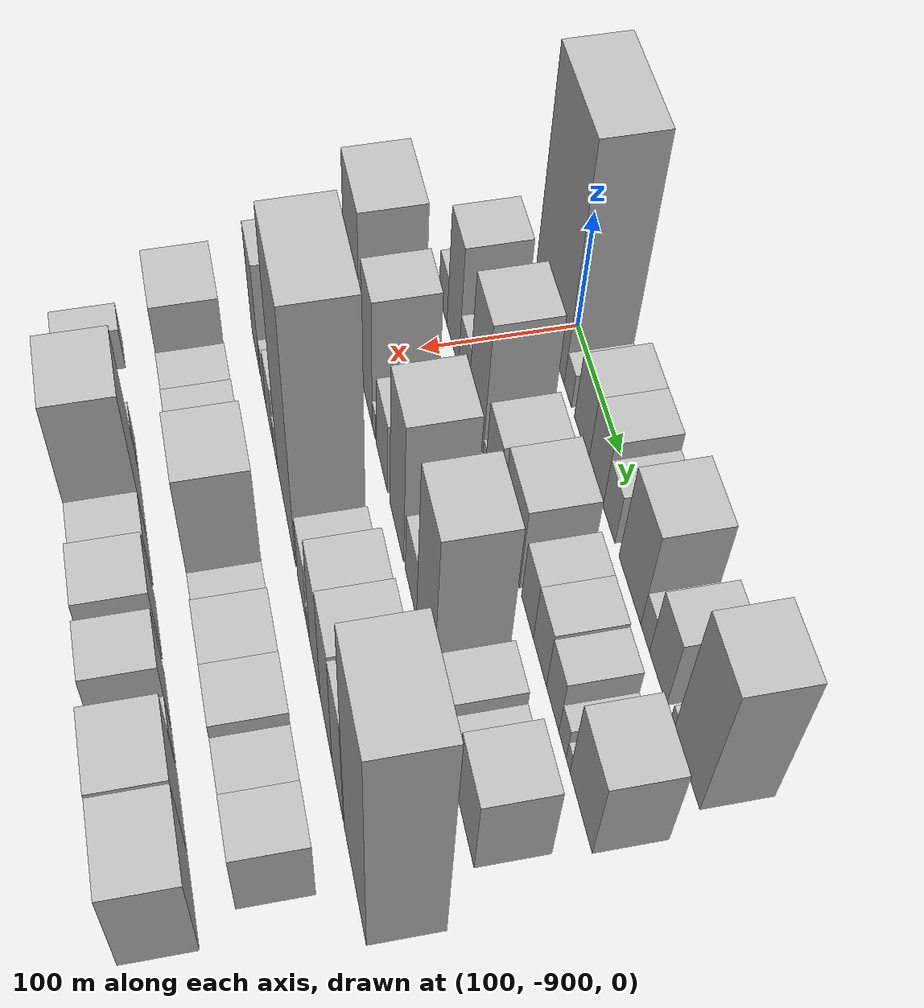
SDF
<sdf version="1.6">
 <world name="default">
  <model name="building_1">
   <static>1</static>
   <pose>100.0000 -895.2777 0 0.000000 0.000000 0.000000</pose>
   <link name="link">
    <pose>0 0 100.50 0 0 0</pose>
    <collision name="collision"><geometry><box><size>40.0000 77.4446 201.0000</size></box></geometry></collision>
    <visual name="visual">
     <cast_shadows>0</cast_shadows>
     <geometry><box><size>40.0000 77.4446 201.0000</size></box></geometry>
     <material>
      <script>
       <uri>model://HANNAS_wall/materials/scripts</uri>
       <uri>model://HANNAS_wall/materials/textures</uri>
       <name>vrc/HANNAS_wall</name>
      </script>
     </material>
    </visual>
   </link>
  </model>
  <model name="building_2">
   <static>1</static>
   <pose>100.0000 -847.5841 0 0.000000 0.000000 0.000000</pose>
   <link name="link">
    <pose>0 0 15.00 0 0 0</pose>
    <collision name="collision"><geometry><box><size>40.0000 17.9428 30.0000</size></box></geometry></collision>
    <visual name="visual">
     <cast_shadows>0</cast_shadows>
     <geometry><box><size>40.0000 17.9428 30.0000</size></box></geometry>
     <material>
      <script>
       <uri>model://HANNAS_wall/materials/scripts</uri>
       <uri>model://HANNAS_wall/materials/textures</uri>
       <name>vrc/HANNAS_wall</name>
      </script>
     </material>
    </visual>
   </link>
  </model>
  <model name="building_3">
   <static>1</static>
   <pose>100.0000 -814.9615 0 0.000000 0.000000 0.000000</pose>
   <link name="link">
    <pose>0 0 30.00 0 0 0</pose>
    <collision name="collision"><geometry><box><size>40.0000 33.3025 60.0000</size></box></geometry></collision>
    <visual name="visual">
     <cast_shadows>0</cast_shadows>
     <geometry><box><size>40.0000 33.3025 60.0000</size></box></geometry>
     <material>
      <script>
       <uri>model://HANNAS_wall/materials/scripts</uri>
       <uri>model://HANNAS_wall/materials/textures</uri>
       <name>vrc/HANNAS_wall</name>
      </script>
     </material>
    </visual>
   </link>
  </model>
  <model name="building_4">
   <static>1</static>
   <pose>100.0000 -782.0932 0 0.000000 0.000000 0.000000</pose>
   <link name="link">
    <pose>0 0 30.00 0 0 0</pose>
    <collision name="collision"><geometry><box><size>40.0000 32.4341 60.0000</size></box></geometry></collision>
    <visual name="visual">
     <cast_shadows>0</cast_shadows>
     <geometry><box><size>40.0000 32.4341 60.0000</size></box></geometry>
     <material>
      <script>
       <uri>model://HANNAS_wall/materials/scripts</uri>
       <uri>model://HANNAS_wall/materials/textures</uri>
       <name>vrc/HANNAS_wall</name>
      </script>
     </material>
    </visual>
   </link>
  </model>
  <model name="building_5">
   <static>1</static>
   <pose>100.0000 -752.9953 0 0.000000 0.000000 0.000000</pose>
   <link name="link">
    <pose>0 0 22.50 0 0 0</pose>
    <collision name="collision"><geometry><box><size>40.0000 25.7616 45.0000</size></box></geometry></collision>
    <visual name="visual">
     <cast_shadows>0</cast_shadows>
     <geometry><box><size>40.0000 25.7616 45.0000</size></box></geometry>
     <material>
      <script>
       <uri>model://HANNAS_wall/materials/scripts</uri>
       <uri>model://HANNAS_wall/materials/textures</uri>
       <name>vrc/HANNAS_wall</name>
      </script>
     </material>
    </visual>
   </link>
  </model>
  <model name="building_6">
   <static>1</static>
   <pose>100.0000 -708.6702 0 0.000000 0.000000 0.000000</pose>
   <link name="link">
    <pose>0 0 43.50 0 0 0</pose>
    <collision name="collision"><geometry><box><size>40.0000 44.8886 87.0000</size></box></geometry></collision>
    <visual name="visual">
     <cast_shadows>0</cast_shadows>
     <geometry><box><size>40.0000 44.8886 87.0000</size></box></geometry>
     <material>
      <script>
       <uri>model://HANNAS_wall/materials/scripts</uri>
       <uri>model://HANNAS_wall/materials/textures</uri>
       <name>vrc/HANNAS_wall</name>
      </script>
     </material>
    </visual>
   </link>
  </model>
  <model name="building_7">
   <static>1</static>
   <pose>100.0000 -677.5483 0 0.000000 0.000000 0.000000</pose>
   <link name="link">
    <pose>0 0 16.50 0 0 0</pose>
    <collision name="collision"><geometry><box><size>40.0000 17.3553 33.0000</size></box></geometry></collision>
    <visual name="visual">
     <cast_shadows>0</cast_shadows>
     <geometry><box><size>40.0000 17.3553 33.0000</size></box></geometry>
     <material>
      <script>
       <uri>model://HANNAS_wall/materials/scripts</uri>
       <uri>model://HANNAS_wall/materials/textures</uri>
       <name>vrc/HANNAS_wall</name>
      </script>
     </material>
    </visual>
   </link>
  </model>
  <model name="building_8">
   <static>1</static>
   <pose>100.0000 -652.5049 0 0.000000 0.000000 0.000000</pose>
   <link name="link">
    <pose>0 0 31.50 0 0 0</pose>
    <collision name="collision"><geometry><box><size>40.0000 32.7315 63.0000</size></box></geometry></collision>
    <visual name="visual">
     <cast_shadows>0</cast_shadows>
     <geometry><box><size>40.0000 32.7315 63.0000</size></box></geometry>
     <material>
      <script>
       <uri>model://HANNAS_wall/materials/scripts</uri>
       <uri>model://HANNAS_wall/materials/textures</uri>
       <name>vrc/HANNAS_wall</name>
      </script>
     </material>
    </visual>
   </link>
  </model>
  <model name="building_9">
   <static>1</static>
   <pose>100.0000 -625.0468 0 0.000000 0.000000 0.000000</pose>
   <link name="link">
    <pose>0 0 7.50 0 0 0</pose>
    <collision name="collision"><geometry><box><size>40.0000 6.1847 15.0000</size></box></geometry></collision>
    <visual name="visual">
     <cast_shadows>0</cast_shadows>
     <geometry><box><size>40.0000 6.1847 15.0000</size></box></geometry>
     <material>
      <script>
       <uri>model://HANNAS_wall/materials/scripts</uri>
       <uri>model://HANNAS_wall/materials/textures</uri>
       <name>vrc/HANNAS_wall</name>
      </script>
     </material>
    </visual>
   </link>
  </model>
  <model name="building_10">
   <static>1</static>
   <pose>100.0000 -598.8502 0 0.000000 0.000000 0.000000</pose>
   <link name="link">
    <pose>0 0 61.50 0 0 0</pose>
    <collision name="collision"><geometry><box><size>40.0000 46.2086 123.0000</size></box></geometry></collision>
    <visual name="visual">
     <cast_shadows>0</cast_shadows>
     <geometry><box><size>40.0000 46.2086 123.0000</size></box></geometry>
     <material>
      <script>
       <uri>model://HANNAS_wall/materials/scripts</uri>
       <uri>model://HANNAS_wall/materials/textures</uri>
       <name>vrc/HANNAS_wall</name>
      </script>
     </material>
    </visual>
   </link>
  </model>
  <model name="building_54">
   <static>1</static>
   <pose>160.0000 -927.9908 0 0.000000 0.000000 0.000000</pose>
   <link name="link">
    <pose>0 0 21.00 0 0 0</pose>
    <collision name="collision"><geometry><box><size>40.0000 24.0184 42.0000</size></box></geometry></collision>
    <visual name="visual">
     <cast_shadows>0</cast_shadows>
     <geometry><box><size>40.0000 24.0184 42.0000</size></box></geometry>
     <material>
      <script>
       <uri>model://HANNAS_wall/materials/scripts</uri>
       <uri>model://HANNAS_wall/materials/textures</uri>
       <name>vrc/HANNAS_wall</name>
      </script>
     </material>
    </visual>
   </link>
  </model>
  <model name="building_55">
   <static>1</static>
   <pose>160.0000 -898.8328 0 0.000000 0.000000 0.000000</pose>
   <link name="link">
    <pose>0 0 52.50 0 0 0</pose>
    <collision name="collision"><geometry><box><size>40.0000 34.2976 105.0000</size></box></geometry></collision>
    <visual name="visual">
     <cast_shadows>0</cast_shadows>
     <geometry><box><size>40.0000 34.2976 105.0000</size></box></geometry>
     <material>
      <script>
       <uri>model://HANNAS_wall/materials/scripts</uri>
       <uri>model://HANNAS_wall/materials/textures</uri>
       <name>vrc/HANNAS_wall</name>
      </script>
     </material>
    </visual>
   </link>
  </model>
  <model name="building_56">
   <static>1</static>
   <pose>160.0000 -867.7565 0 0.000000 0.000000 0.000000</pose>
   <link name="link">
    <pose>0 0 24.00 0 0 0</pose>
    <collision name="collision"><geometry><box><size>40.0000 27.8552 48.0000</size></box></geometry></collision>
    <visual name="visual">
     <cast_shadows>0</cast_shadows>
     <geometry><box><size>40.0000 27.8552 48.0000</size></box></geometry>
     <material>
      <script>
       <uri>model://HANNAS_wall/materials/scripts</uri>
       <uri>model://HANNAS_wall/materials/textures</uri>
       <name>vrc/HANNAS_wall</name>
      </script>
     </material>
    </visual>
   </link>
  </model>
  <model name="building_57">
   <static>1</static>
   <pose>160.0000 -833.9376 0 0.000000 0.000000 0.000000</pose>
   <link name="link">
    <pose>0 0 58.50 0 0 0</pose>
    <collision name="collision"><geometry><box><size>40.0000 39.7826 117.0000</size></box></geometry></collision>
    <visual name="visual">
     <cast_shadows>0</cast_shadows>
     <geometry><box><size>40.0000 39.7826 117.0000</size></box></geometry>
     <material>
      <script>
       <uri>model://HANNAS_wall/materials/scripts</uri>
       <uri>model://HANNAS_wall/materials/textures</uri>
       <name>vrc/HANNAS_wall</name>
      </script>
     </material>
    </visual>
   </link>
  </model>
  <model name="building_58">
   <static>1</static>
   <pose>160.0000 -810.3948 0 0.000000 0.000000 0.000000</pose>
   <link name="link">
    <pose>0 0 7.50 0 0 0</pose>
    <collision name="collision"><geometry><box><size>40.0000 7.3031 15.0000</size></box></geometry></collision>
    <visual name="visual">
     <cast_shadows>0</cast_shadows>
     <geometry><box><size>40.0000 7.3031 15.0000</size></box></geometry>
     <material>
      <script>
       <uri>model://HANNAS_wall/materials/scripts</uri>
       <uri>model://HANNAS_wall/materials/textures</uri>
       <name>vrc/HANNAS_wall</name>
      </script>
     </material>
    </visual>
   </link>
  </model>
  <model name="building_59">
   <static>1</static>
   <pose>160.0000 -790.4856 0 0.000000 0.000000 0.000000</pose>
   <link name="link">
    <pose>0 0 30.00 0 0 0</pose>
    <collision name="collision"><geometry><box><size>40.0000 32.5152 60.0000</size></box></geometry></collision>
    <visual name="visual">
     <cast_shadows>0</cast_shadows>
     <geometry><box><size>40.0000 32.5152 60.0000</size></box></geometry>
     <material>
      <script>
       <uri>model://HANNAS_wall/materials/scripts</uri>
       <uri>model://HANNAS_wall/materials/textures</uri>
       <name>vrc/HANNAS_wall</name>
      </script>
     </material>
    </visual>
   </link>
  </model>
  <model name="building_60">
   <static>1</static>
   <pose>160.0000 -742.6787 0 0.000000 0.000000 0.000000</pose>
   <link name="link">
    <pose>0 0 37.50 0 0 0</pose>
    <collision name="collision"><geometry><box><size>40.0000 43.0987 75.0000</size></box></geometry></collision>
    <visual name="visual">
     <cast_shadows>0</cast_shadows>
     <geometry><box><size>40.0000 43.0987 75.0000</size></box></geometry>
     <material>
      <script>
       <uri>model://HANNAS_wall/materials/scripts</uri>
       <uri>model://HANNAS_wall/materials/textures</uri>
       <name>vrc/HANNAS_wall</name>
      </script>
     </material>
    </visual>
   </link>
  </model>
  <model name="building_61">
   <static>1</static>
   <pose>160.0000 -702.3537 0 0.000000 0.000000 0.000000</pose>
   <link name="link">
    <pose>0 0 27.00 0 0 0</pose>
    <collision name="collision"><geometry><box><size>40.0000 27.5514 54.0000</size></box></geometry></collision>
    <visual name="visual">
     <cast_shadows>0</cast_shadows>
     <geometry><box><size>40.0000 27.5514 54.0000</size></box></geometry>
     <material>
      <script>
       <uri>model://HANNAS_wall/materials/scripts</uri>
       <uri>model://HANNAS_wall/materials/textures</uri>
       <name>vrc/HANNAS_wall</name>
      </script>
     </material>
    </visual>
   </link>
  </model>
  <model name="building_62">
   <static>1</static>
   <pose>160.0000 -673.6797 0 0.000000 0.000000 0.000000</pose>
   <link name="link">
    <pose>0 0 27.00 0 0 0</pose>
    <collision name="collision"><geometry><box><size>40.0000 29.7965 54.0000</size></box></geometry></collision>
    <visual name="visual">
     <cast_shadows>0</cast_shadows>
     <geometry><box><size>40.0000 29.7965 54.0000</size></box></geometry>
     <material>
      <script>
       <uri>model://HANNAS_wall/materials/scripts</uri>
       <uri>model://HANNAS_wall/materials/textures</uri>
       <name>vrc/HANNAS_wall</name>
      </script>
     </material>
    </visual>
   </link>
  </model>
  <model name="building_63">
   <static>1</static>
   <pose>160.0000 -645.2912 0 0.000000 0.000000 0.000000</pose>
   <link name="link">
    <pose>0 0 25.50 0 0 0</pose>
    <collision name="collision"><geometry><box><size>40.0000 26.9807 51.0000</size></box></geometry></collision>
    <visual name="visual">
     <cast_shadows>0</cast_shadows>
     <geometry><box><size>40.0000 26.9807 51.0000</size></box></geometry>
     <material>
      <script>
       <uri>model://HANNAS_wall/materials/scripts</uri>
       <uri>model://HANNAS_wall/materials/textures</uri>
       <name>vrc/HANNAS_wall</name>
      </script>
     </material>
    </visual>
   </link>
  </model>
  <model name="building_64">
   <static>1</static>
   <pose>160.0000 -624.0570 0 0.000000 0.000000 0.000000</pose>
   <link name="link">
    <pose>0 0 15.00 0 0 0</pose>
    <collision name="collision"><geometry><box><size>40.0000 15.4877 30.0000</size></box></geometry></collision>
    <visual name="visual">
     <cast_shadows>0</cast_shadows>
     <geometry><box><size>40.0000 15.4877 30.0000</size></box></geometry>
     <material>
      <script>
       <uri>model://HANNAS_wall/materials/scripts</uri>
       <uri>model://HANNAS_wall/materials/textures</uri>
       <name>vrc/HANNAS_wall</name>
      </script>
     </material>
    </visual>
   </link>
  </model>
  <model name="building_65">
   <static>1</static>
   <pose>160.0000 -612.2187 0 0.000000 0.000000 0.000000</pose>
   <link name="link">
    <pose>0 0 9.00 0 0 0</pose>
    <collision name="collision"><geometry><box><size>40.0000 8.1890 18.0000</size></box></geometry></collision>
    <visual name="visual">
     <cast_shadows>0</cast_shadows>
     <geometry><box><size>40.0000 8.1890 18.0000</size></box></geometry>
     <material>
      <script>
       <uri>model://HANNAS_wall/materials/scripts</uri>
       <uri>model://HANNAS_wall/materials/textures</uri>
       <name>vrc/HANNAS_wall</name>
      </script>
     </material>
    </visual>
   </link>
  </model>
  <model name="building_66">
   <static>1</static>
   <pose>160.0000 -585.6328 0 0.000000 0.000000 0.000000</pose>
   <link name="link">
    <pose>0 0 37.50 0 0 0</pose>
    <collision name="collision"><geometry><box><size>40.0000 44.9827 75.0000</size></box></geometry></collision>
    <visual name="visual">
     <cast_shadows>0</cast_shadows>
     <geometry><box><size>40.0000 44.9827 75.0000</size></box></geometry>
     <material>
      <script>
       <uri>model://HANNAS_wall/materials/scripts</uri>
       <uri>model://HANNAS_wall/materials/textures</uri>
       <name>vrc/HANNAS_wall</name>
      </script>
     </material>
    </visual>
   </link>
  </model>
  <model name="building_112">
   <static>1</static>
   <pose>220.0000 -914.1898 0 0.000000 0.000000 0.000000</pose>
   <link name="link">
    <pose>0 0 69.00 0 0 0</pose>
    <collision name="collision"><geometry><box><size>40.0000 51.6205 138.0000</size></box></geometry></collision>
    <visual name="visual">
     <cast_shadows>0</cast_shadows>
     <geometry><box><size>40.0000 51.6205 138.0000</size></box></geometry>
     <material>
      <script>
       <uri>model://HANNAS_wall/materials/scripts</uri>
       <uri>model://HANNAS_wall/materials/textures</uri>
       <name>vrc/HANNAS_wall</name>
      </script>
     </material>
    </visual>
   </link>
  </model>
  <model name="building_113">
   <static>1</static>
   <pose>220.0000 -863.7200 0 0.000000 0.000000 0.000000</pose>
   <link name="link">
    <pose>0 0 55.50 0 0 0</pose>
    <collision name="collision"><geometry><box><size>40.0000 33.3190 111.0000</size></box></geometry></collision>
    <visual name="visual">
     <cast_shadows>0</cast_shadows>
     <geometry><box><size>40.0000 33.3190 111.0000</size></box></geometry>
     <material>
      <script>
       <uri>model://HANNAS_wall/materials/scripts</uri>
       <uri>model://HANNAS_wall/materials/textures</uri>
       <name>vrc/HANNAS_wall</name>
      </script>
     </material>
    </visual>
   </link>
  </model>
  <model name="building_114">
   <static>1</static>
   <pose>220.0000 -842.0062 0 0.000000 0.000000 0.000000</pose>
   <link name="link">
    <pose>0 0 12.00 0 0 0</pose>
    <collision name="collision"><geometry><box><size>40.0000 10.1086 24.0000</size></box></geometry></collision>
    <visual name="visual">
     <cast_shadows>0</cast_shadows>
     <geometry><box><size>40.0000 10.1086 24.0000</size></box></geometry>
     <material>
      <script>
       <uri>model://HANNAS_wall/materials/scripts</uri>
       <uri>model://HANNAS_wall/materials/textures</uri>
       <name>vrc/HANNAS_wall</name>
      </script>
     </material>
    </visual>
   </link>
  </model>
  <model name="building_115">
   <static>1</static>
   <pose>220.0000 -815.4545 0 0.000000 0.000000 0.000000</pose>
   <link name="link">
    <pose>0 0 31.50 0 0 0</pose>
    <collision name="collision"><geometry><box><size>40.0000 34.9948 63.0000</size></box></geometry></collision>
    <visual name="visual">
     <cast_shadows>0</cast_shadows>
     <geometry><box><size>40.0000 34.9948 63.0000</size></box></geometry>
     <material>
      <script>
       <uri>model://HANNAS_wall/materials/scripts</uri>
       <uri>model://HANNAS_wall/materials/textures</uri>
       <name>vrc/HANNAS_wall</name>
      </script>
     </material>
    </visual>
   </link>
  </model>
  <model name="building_116">
   <static>1</static>
   <pose>220.0000 -770.4806 0 0.000000 0.000000 0.000000</pose>
   <link name="link">
    <pose>0 0 63.00 0 0 0</pose>
    <collision name="collision"><geometry><box><size>40.0000 40.9531 126.0000</size></box></geometry></collision>
    <visual name="visual">
     <cast_shadows>0</cast_shadows>
     <geometry><box><size>40.0000 40.9531 126.0000</size></box></geometry>
     <material>
      <script>
       <uri>model://HANNAS_wall/materials/scripts</uri>
       <uri>model://HANNAS_wall/materials/textures</uri>
       <name>vrc/HANNAS_wall</name>
      </script>
     </material>
    </visual>
   </link>
  </model>
  <model name="building_117">
   <static>1</static>
   <pose>220.0000 -729.1171 0 0.000000 0.000000 0.000000</pose>
   <link name="link">
    <pose>0 0 27.00 0 0 0</pose>
    <collision name="collision"><geometry><box><size>40.0000 31.7740 54.0000</size></box></geometry></collision>
    <visual name="visual">
     <cast_shadows>0</cast_shadows>
     <geometry><box><size>40.0000 31.7740 54.0000</size></box></geometry>
     <material>
      <script>
       <uri>model://HANNAS_wall/materials/scripts</uri>
       <uri>model://HANNAS_wall/materials/textures</uri>
       <name>vrc/HANNAS_wall</name>
      </script>
     </material>
    </visual>
   </link>
  </model>
  <model name="building_118">
   <static>1</static>
   <pose>220.0000 -690.3262 0 0.000000 0.000000 0.000000</pose>
   <link name="link">
    <pose>0 0 73.50 0 0 0</pose>
    <collision name="collision"><geometry><box><size>40.0000 45.8078 147.0000</size></box></geometry></collision>
    <visual name="visual">
     <cast_shadows>0</cast_shadows>
     <geometry><box><size>40.0000 45.8078 147.0000</size></box></geometry>
     <material>
      <script>
       <uri>model://HANNAS_wall/materials/scripts</uri>
       <uri>model://HANNAS_wall/materials/textures</uri>
       <name>vrc/HANNAS_wall</name>
      </script>
     </material>
    </visual>
   </link>
  </model>
  <model name="building_119">
   <static>1</static>
   <pose>220.0000 -645.3459 0 0.000000 0.000000 0.000000</pose>
   <link name="link">
    <pose>0 0 27.00 0 0 0</pose>
    <collision name="collision"><geometry><box><size>40.0000 30.1527 54.0000</size></box></geometry></collision>
    <visual name="visual">
     <cast_shadows>0</cast_shadows>
     <geometry><box><size>40.0000 30.1527 54.0000</size></box></geometry>
     <material>
      <script>
       <uri>model://HANNAS_wall/materials/scripts</uri>
       <uri>model://HANNAS_wall/materials/textures</uri>
       <name>vrc/HANNAS_wall</name>
      </script>
     </material>
    </visual>
   </link>
  </model>
  <model name="building_120">
   <static>1</static>
   <pose>220.0000 -618.4193 0 0.000000 0.000000 0.000000</pose>
   <link name="link">
    <pose>0 0 21.00 0 0 0</pose>
    <collision name="collision"><geometry><box><size>40.0000 23.7007 42.0000</size></box></geometry></collision>
    <visual name="visual">
     <cast_shadows>0</cast_shadows>
     <geometry><box><size>40.0000 23.7007 42.0000</size></box></geometry>
     <material>
      <script>
       <uri>model://HANNAS_wall/materials/scripts</uri>
       <uri>model://HANNAS_wall/materials/textures</uri>
       <name>vrc/HANNAS_wall</name>
      </script>
     </material>
    </visual>
   </link>
  </model>
  <model name="building_121">
   <static>1</static>
   <pose>220.0000 -586.6677 0 0.000000 0.000000 0.000000</pose>
   <link name="link">
    <pose>0 0 36.00 0 0 0</pose>
    <collision name="collision"><geometry><box><size>40.0000 39.8025 72.0000</size></box></geometry></collision>
    <visual name="visual">
     <cast_shadows>0</cast_shadows>
     <geometry><box><size>40.0000 39.8025 72.0000</size></box></geometry>
     <material>
      <script>
       <uri>model://HANNAS_wall/materials/scripts</uri>
       <uri>model://HANNAS_wall/materials/textures</uri>
       <name>vrc/HANNAS_wall</name>
      </script>
     </material>
    </visual>
   </link>
  </model>
  <model name="building_168">
   <static>1</static>
   <pose>280.0000 -914.3869 0 0.000000 0.000000 0.000000</pose>
   <link name="link">
    <pose>0 0 49.50 0 0 0</pose>
    <collision name="collision"><geometry><box><size>40.0000 35.2262 99.0000</size></box></geometry></collision>
    <visual name="visual">
     <cast_shadows>0</cast_shadows>
     <geometry><box><size>40.0000 35.2262 99.0000</size></box></geometry>
     <material>
      <script>
       <uri>model://HANNAS_wall/materials/scripts</uri>
       <uri>model://HANNAS_wall/materials/textures</uri>
       <name>vrc/HANNAS_wall</name>
      </script>
     </material>
    </visual>
   </link>
  </model>
  <model name="building_169">
   <static>1</static>
   <pose>280.0000 -882.7238 0 0.000000 0.000000 0.000000</pose>
   <link name="link">
    <pose>0 0 19.50 0 0 0</pose>
    <collision name="collision"><geometry><box><size>40.0000 20.1000 39.0000</size></box></geometry></collision>
    <visual name="visual">
     <cast_shadows>0</cast_shadows>
     <geometry><box><size>40.0000 20.1000 39.0000</size></box></geometry>
     <material>
      <script>
       <uri>model://HANNAS_wall/materials/scripts</uri>
       <uri>model://HANNAS_wall/materials/textures</uri>
       <name>vrc/HANNAS_wall</name>
      </script>
     </material>
    </visual>
   </link>
  </model>
  <model name="building_170">
   <static>1</static>
   <pose>280.0000 -857.6192 0 0.000000 0.000000 0.000000</pose>
   <link name="link">
    <pose>0 0 27.00 0 0 0</pose>
    <collision name="collision"><geometry><box><size>40.0000 30.1091 54.0000</size></box></geometry></collision>
    <visual name="visual">
     <cast_shadows>0</cast_shadows>
     <geometry><box><size>40.0000 30.1091 54.0000</size></box></geometry>
     <material>
      <script>
       <uri>model://HANNAS_wall/materials/scripts</uri>
       <uri>model://HANNAS_wall/materials/textures</uri>
       <name>vrc/HANNAS_wall</name>
      </script>
     </material>
    </visual>
   </link>
  </model>
  <model name="building_171">
   <static>1</static>
   <pose>280.0000 -833.9970 0 0.000000 0.000000 0.000000</pose>
   <link name="link">
    <pose>0 0 15.00 0 0 0</pose>
    <collision name="collision"><geometry><box><size>40.0000 17.1353 30.0000</size></box></geometry></collision>
    <visual name="visual">
     <cast_shadows>0</cast_shadows>
     <geometry><box><size>40.0000 17.1353 30.0000</size></box></geometry>
     <material>
      <script>
       <uri>model://HANNAS_wall/materials/scripts</uri>
       <uri>model://HANNAS_wall/materials/textures</uri>
       <name>vrc/HANNAS_wall</name>
      </script>
     </material>
    </visual>
   </link>
  </model>
  <model name="building_172">
   <static>1</static>
   <pose>280.0000 -791.8586 0 0.000000 0.000000 0.000000</pose>
   <link name="link">
    <pose>0 0 111.00 0 0 0</pose>
    <collision name="collision"><geometry><box><size>40.0000 67.1416 222.0000</size></box></geometry></collision>
    <visual name="visual">
     <cast_shadows>0</cast_shadows>
     <geometry><box><size>40.0000 67.1416 222.0000</size></box></geometry>
     <material>
      <script>
       <uri>model://HANNAS_wall/materials/scripts</uri>
       <uri>model://HANNAS_wall/materials/textures</uri>
       <name>vrc/HANNAS_wall</name>
      </script>
     </material>
    </visual>
   </link>
  </model>
  <model name="building_173">
   <static>1</static>
   <pose>280.0000 -735.6398 0 0.000000 0.000000 0.000000</pose>
   <link name="link">
    <pose>0 0 30.00 0 0 0</pose>
    <collision name="collision"><geometry><box><size>40.0000 31.2961 60.0000</size></box></geometry></collision>
    <visual name="visual">
     <cast_shadows>0</cast_shadows>
     <geometry><box><size>40.0000 31.2961 60.0000</size></box></geometry>
     <material>
      <script>
       <uri>model://HANNAS_wall/materials/scripts</uri>
       <uri>model://HANNAS_wall/materials/textures</uri>
       <name>vrc/HANNAS_wall</name>
      </script>
     </material>
    </visual>
   </link>
  </model>
  <model name="building_174">
   <static>1</static>
   <pose>280.0000 -714.7332 0 0.000000 0.000000 0.000000</pose>
   <link name="link">
    <pose>0 0 12.00 0 0 0</pose>
    <collision name="collision"><geometry><box><size>40.0000 10.5170 24.0000</size></box></geometry></collision>
    <visual name="visual">
     <cast_shadows>0</cast_shadows>
     <geometry><box><size>40.0000 10.5170 24.0000</size></box></geometry>
     <material>
      <script>
       <uri>model://HANNAS_wall/materials/scripts</uri>
       <uri>model://HANNAS_wall/materials/textures</uri>
       <name>vrc/HANNAS_wall</name>
      </script>
     </material>
    </visual>
   </link>
  </model>
  <model name="building_175">
   <static>1</static>
   <pose>280.0000 -691.7377 0 0.000000 0.000000 0.000000</pose>
   <link name="link">
    <pose>0 0 51.00 0 0 0</pose>
    <collision name="collision"><geometry><box><size>40.0000 35.4740 102.0000</size></box></geometry></collision>
    <visual name="visual">
     <cast_shadows>0</cast_shadows>
     <geometry><box><size>40.0000 35.4740 102.0000</size></box></geometry>
     <material>
      <script>
       <uri>model://HANNAS_wall/materials/scripts</uri>
       <uri>model://HANNAS_wall/materials/textures</uri>
       <name>vrc/HANNAS_wall</name>
      </script>
     </material>
    </visual>
   </link>
  </model>
  <model name="building_176">
   <static>1</static>
   <pose>280.0000 -655.6229 0 0.000000 0.000000 0.000000</pose>
   <link name="link">
    <pose>0 0 55.50 0 0 0</pose>
    <collision name="collision"><geometry><box><size>40.0000 36.7555 111.0000</size></box></geometry></collision>
    <visual name="visual">
     <cast_shadows>0</cast_shadows>
     <geometry><box><size>40.0000 36.7555 111.0000</size></box></geometry>
     <material>
      <script>
       <uri>model://HANNAS_wall/materials/scripts</uri>
       <uri>model://HANNAS_wall/materials/textures</uri>
       <name>vrc/HANNAS_wall</name>
      </script>
     </material>
    </visual>
   </link>
  </model>
  <model name="building_177">
   <static>1</static>
   <pose>280.0000 -620.1579 0 0.000000 0.000000 0.000000</pose>
   <link name="link">
    <pose>0 0 54.00 0 0 0</pose>
    <collision name="collision"><geometry><box><size>40.0000 34.1746 108.0000</size></box></geometry></collision>
    <visual name="visual">
     <cast_shadows>0</cast_shadows>
     <geometry><box><size>40.0000 34.1746 108.0000</size></box></geometry>
     <material>
      <script>
       <uri>model://HANNAS_wall/materials/scripts</uri>
       <uri>model://HANNAS_wall/materials/textures</uri>
       <name>vrc/HANNAS_wall</name>
      </script>
     </material>
    </visual>
   </link>
  </model>
  <model name="building_178">
   <static>1</static>
   <pose>280.0000 -568.9653 0 0.000000 0.000000 0.000000</pose>
   <link name="link">
    <pose>0 0 103.50 0 0 0</pose>
    <collision name="collision"><geometry><box><size>40.0000 62.2105 207.0000</size></box></geometry></collision>
    <visual name="visual">
     <cast_shadows>0</cast_shadows>
     <geometry><box><size>40.0000 62.2105 207.0000</size></box></geometry>
     <material>
      <script>
       <uri>model://HANNAS_wall/materials/scripts</uri>
       <uri>model://HANNAS_wall/materials/textures</uri>
       <name>vrc/HANNAS_wall</name>
      </script>
     </material>
    </visual>
   </link>
  </model>
  <model name="building_225">
   <static>1</static>
   <pose>340.0000 -917.4089 0 0.000000 0.000000 0.000000</pose>
   <link name="link">
    <pose>0 0 39.00 0 0 0</pose>
    <collision name="collision"><geometry><box><size>40.0000 45.1822 78.0000</size></box></geometry></collision>
    <visual name="visual">
     <cast_shadows>0</cast_shadows>
     <geometry><box><size>40.0000 45.1822 78.0000</size></box></geometry>
     <material>
      <script>
       <uri>model://HANNAS_wall/materials/scripts</uri>
       <uri>model://HANNAS_wall/materials/textures</uri>
       <name>vrc/HANNAS_wall</name>
      </script>
     </material>
    </visual>
   </link>
  </model>
  <model name="building_226">
   <static>1</static>
   <pose>340.0000 -889.5765 0 0.000000 0.000000 0.000000</pose>
   <link name="link">
    <pose>0 0 10.50 0 0 0</pose>
    <collision name="collision"><geometry><box><size>40.0000 10.4828 21.0000</size></box></geometry></collision>
    <visual name="visual">
     <cast_shadows>0</cast_shadows>
     <geometry><box><size>40.0000 10.4828 21.0000</size></box></geometry>
     <material>
      <script>
       <uri>model://HANNAS_wall/materials/scripts</uri>
       <uri>model://HANNAS_wall/materials/textures</uri>
       <name>vrc/HANNAS_wall</name>
      </script>
     </material>
    </visual>
   </link>
  </model>
  <model name="building_227">
   <static>1</static>
   <pose>340.0000 -869.7013 0 0.000000 0.000000 0.000000</pose>
   <link name="link">
    <pose>0 0 25.50 0 0 0</pose>
    <collision name="collision"><geometry><box><size>40.0000 29.2675 51.0000</size></box></geometry></collision>
    <visual name="visual">
     <cast_shadows>0</cast_shadows>
     <geometry><box><size>40.0000 29.2675 51.0000</size></box></geometry>
     <material>
      <script>
       <uri>model://HANNAS_wall/materials/scripts</uri>
       <uri>model://HANNAS_wall/materials/textures</uri>
       <name>vrc/HANNAS_wall</name>
      </script>
     </material>
    </visual>
   </link>
  </model>
  <model name="building_228">
   <static>1</static>
   <pose>340.0000 -834.5256 0 0.000000 0.000000 0.000000</pose>
   <link name="link">
    <pose>0 0 30.00 0 0 0</pose>
    <collision name="collision"><geometry><box><size>40.0000 31.0839 60.0000</size></box></geometry></collision>
    <visual name="visual">
     <cast_shadows>0</cast_shadows>
     <geometry><box><size>40.0000 31.0839 60.0000</size></box></geometry>
     <material>
      <script>
       <uri>model://HANNAS_wall/materials/scripts</uri>
       <uri>model://HANNAS_wall/materials/textures</uri>
       <name>vrc/HANNAS_wall</name>
      </script>
     </material>
    </visual>
   </link>
  </model>
  <model name="building_229">
   <static>1</static>
   <pose>340.0000 -801.0010 0 0.000000 0.000000 0.000000</pose>
   <link name="link">
    <pose>0 0 31.50 0 0 0</pose>
    <collision name="collision"><geometry><box><size>40.0000 35.9652 63.0000</size></box></geometry></collision>
    <visual name="visual">
     <cast_shadows>0</cast_shadows>
     <geometry><box><size>40.0000 35.9652 63.0000</size></box></geometry>
     <material>
      <script>
       <uri>model://HANNAS_wall/materials/scripts</uri>
       <uri>model://HANNAS_wall/materials/textures</uri>
       <name>vrc/HANNAS_wall</name>
      </script>
     </material>
    </visual>
   </link>
  </model>
  <model name="building_230">
   <static>1</static>
   <pose>340.0000 -760.9612 0 0.000000 0.000000 0.000000</pose>
   <link name="link">
    <pose>0 0 63.00 0 0 0</pose>
    <collision name="collision"><geometry><box><size>40.0000 44.1145 126.0000</size></box></geometry></collision>
    <visual name="visual">
     <cast_shadows>0</cast_shadows>
     <geometry><box><size>40.0000 44.1145 126.0000</size></box></geometry>
     <material>
      <script>
       <uri>model://HANNAS_wall/materials/scripts</uri>
       <uri>model://HANNAS_wall/materials/textures</uri>
       <name>vrc/HANNAS_wall</name>
      </script>
     </material>
    </visual>
   </link>
  </model>
  <model name="building_231">
   <static>1</static>
   <pose>340.0000 -726.3278 0 0.000000 0.000000 0.000000</pose>
   <link name="link">
    <pose>0 0 21.00 0 0 0</pose>
    <collision name="collision"><geometry><box><size>40.0000 25.1523 42.0000</size></box></geometry></collision>
    <visual name="visual">
     <cast_shadows>0</cast_shadows>
     <geometry><box><size>40.0000 25.1523 42.0000</size></box></geometry>
     <material>
      <script>
       <uri>model://HANNAS_wall/materials/scripts</uri>
       <uri>model://HANNAS_wall/materials/textures</uri>
       <name>vrc/HANNAS_wall</name>
      </script>
     </material>
    </visual>
   </link>
  </model>
  <model name="building_232">
   <static>1</static>
   <pose>340.0000 -710.7018 0 0.000000 0.000000 0.000000</pose>
   <link name="link">
    <pose>0 0 7.50 0 0 0</pose>
    <collision name="collision"><geometry><box><size>40.0000 6.0998 15.0000</size></box></geometry></collision>
    <visual name="visual">
     <cast_shadows>0</cast_shadows>
     <geometry><box><size>40.0000 6.0998 15.0000</size></box></geometry>
     <material>
      <script>
       <uri>model://HANNAS_wall/materials/scripts</uri>
       <uri>model://HANNAS_wall/materials/textures</uri>
       <name>vrc/HANNAS_wall</name>
      </script>
     </material>
    </visual>
   </link>
  </model>
  <model name="building_233">
   <static>1</static>
   <pose>340.0000 -687.9804 0 0.000000 0.000000 0.000000</pose>
   <link name="link">
    <pose>0 0 33.00 0 0 0</pose>
    <collision name="collision"><geometry><box><size>40.0000 39.3429 66.0000</size></box></geometry></collision>
    <visual name="visual">
     <cast_shadows>0</cast_shadows>
     <geometry><box><size>40.0000 39.3429 66.0000</size></box></geometry>
     <material>
      <script>
       <uri>model://HANNAS_wall/materials/scripts</uri>
       <uri>model://HANNAS_wall/materials/textures</uri>
       <name>vrc/HANNAS_wall</name>
      </script>
     </material>
    </visual>
   </link>
  </model>
  <model name="building_234">
   <static>1</static>
   <pose>340.0000 -651.0139 0 0.000000 0.000000 0.000000</pose>
   <link name="link">
    <pose>0 0 34.50 0 0 0</pose>
    <collision name="collision"><geometry><box><size>40.0000 34.5901 69.0000</size></box></geometry></collision>
    <visual name="visual">
     <cast_shadows>0</cast_shadows>
     <geometry><box><size>40.0000 34.5901 69.0000</size></box></geometry>
     <material>
      <script>
       <uri>model://HANNAS_wall/materials/scripts</uri>
       <uri>model://HANNAS_wall/materials/textures</uri>
       <name>vrc/HANNAS_wall</name>
      </script>
     </material>
    </visual>
   </link>
  </model>
  <model name="building_235">
   <static>1</static>
   <pose>340.0000 -617.9615 0 0.000000 0.000000 0.000000</pose>
   <link name="link">
    <pose>0 0 28.50 0 0 0</pose>
    <collision name="collision"><geometry><box><size>40.0000 31.5147 57.0000</size></box></geometry></collision>
    <visual name="visual">
     <cast_shadows>0</cast_shadows>
     <geometry><box><size>40.0000 31.5147 57.0000</size></box></geometry>
     <material>
      <script>
       <uri>model://HANNAS_wall/materials/scripts</uri>
       <uri>model://HANNAS_wall/materials/textures</uri>
       <name>vrc/HANNAS_wall</name>
      </script>
     </material>
    </visual>
   </link>
  </model>
  <model name="building_236">
   <static>1</static>
   <pose>340.0000 -584.9547 0 0.000000 0.000000 0.000000</pose>
   <link name="link">
    <pose>0 0 30.00 0 0 0</pose>
    <collision name="collision"><geometry><box><size>40.0000 34.4989 60.0000</size></box></geometry></collision>
    <visual name="visual">
     <cast_shadows>0</cast_shadows>
     <geometry><box><size>40.0000 34.4989 60.0000</size></box></geometry>
     <material>
      <script>
       <uri>model://HANNAS_wall/materials/scripts</uri>
       <uri>model://HANNAS_wall/materials/textures</uri>
       <name>vrc/HANNAS_wall</name>
      </script>
     </material>
    </visual>
   </link>
  </model>
  <model name="building_277">
   <static>1</static>
   <pose>400.0000 -929.2134 0 0.000000 0.000000 0.000000</pose>
   <link name="link">
    <pose>0 0 18.00 0 0 0</pose>
    <collision name="collision"><geometry><box><size>40.0000 21.5732 36.0000</size></box></geometry></collision>
    <visual name="visual">
     <cast_shadows>0</cast_shadows>
     <geometry><box><size>40.0000 21.5732 36.0000</size></box></geometry>
     <material>
      <script>
       <uri>model://HANNAS_wall/materials/scripts</uri>
       <uri>model://HANNAS_wall/materials/textures</uri>
       <name>vrc/HANNAS_wall</name>
      </script>
     </material>
    </visual>
   </link>
  </model>
  <model name="building_278">
   <static>1</static>
   <pose>400.0000 -854.3245 0 0.000000 0.000000 0.000000</pose>
   <link name="link">
    <pose>0 0 18.00 0 0 0</pose>
    <collision name="collision"><geometry><box><size>40.0000 18.7348 36.0000</size></box></geometry></collision>
    <visual name="visual">
     <cast_shadows>0</cast_shadows>
     <geometry><box><size>40.0000 18.7348 36.0000</size></box></geometry>
     <material>
      <script>
       <uri>model://HANNAS_wall/materials/scripts</uri>
       <uri>model://HANNAS_wall/materials/textures</uri>
       <name>vrc/HANNAS_wall</name>
      </script>
     </material>
    </visual>
   </link>
  </model>
  <model name="building_279">
   <static>1</static>
   <pose>400.0000 -841.0796 0 0.000000 0.000000 0.000000</pose>
   <link name="link">
    <pose>0 0 9.00 0 0 0</pose>
    <collision name="collision"><geometry><box><size>40.0000 7.7550 18.0000</size></box></geometry></collision>
    <visual name="visual">
     <cast_shadows>0</cast_shadows>
     <geometry><box><size>40.0000 7.7550 18.0000</size></box></geometry>
     <material>
      <script>
       <uri>model://HANNAS_wall/materials/scripts</uri>
       <uri>model://HANNAS_wall/materials/textures</uri>
       <name>vrc/HANNAS_wall</name>
      </script>
     </material>
    </visual>
   </link>
  </model>
  <model name="building_280">
   <static>1</static>
   <pose>400.0000 -813.5428 0 0.000000 0.000000 0.000000</pose>
   <link name="link">
    <pose>0 0 67.50 0 0 0</pose>
    <collision name="collision"><geometry><box><size>40.0000 47.3188 135.0000</size></box></geometry></collision>
    <visual name="visual">
     <cast_shadows>0</cast_shadows>
     <geometry><box><size>40.0000 47.3188 135.0000</size></box></geometry>
     <material>
      <script>
       <uri>model://HANNAS_wall/materials/scripts</uri>
       <uri>model://HANNAS_wall/materials/textures</uri>
       <name>vrc/HANNAS_wall</name>
      </script>
     </material>
    </visual>
   </link>
  </model>
  <model name="building_281">
   <static>1</static>
   <pose>400.0000 -775.1421 0 0.000000 0.000000 0.000000</pose>
   <link name="link">
    <pose>0 0 25.50 0 0 0</pose>
    <collision name="collision"><geometry><box><size>40.0000 29.4826 51.0000</size></box></geometry></collision>
    <visual name="visual">
     <cast_shadows>0</cast_shadows>
     <geometry><box><size>40.0000 29.4826 51.0000</size></box></geometry>
     <material>
      <script>
       <uri>model://HANNAS_wall/materials/scripts</uri>
       <uri>model://HANNAS_wall/materials/textures</uri>
       <name>vrc/HANNAS_wall</name>
      </script>
     </material>
    </visual>
   </link>
  </model>
  <model name="building_282">
   <static>1</static>
   <pose>400.0000 -732.5220 0 0.000000 0.000000 0.000000</pose>
   <link name="link">
    <pose>0 0 34.50 0 0 0</pose>
    <collision name="collision"><geometry><box><size>40.0000 37.7576 69.0000</size></box></geometry></collision>
    <visual name="visual">
     <cast_shadows>0</cast_shadows>
     <geometry><box><size>40.0000 37.7576 69.0000</size></box></geometry>
     <material>
      <script>
       <uri>model://HANNAS_wall/materials/scripts</uri>
       <uri>model://HANNAS_wall/materials/textures</uri>
       <name>vrc/HANNAS_wall</name>
      </script>
     </material>
    </visual>
   </link>
  </model>
  <model name="building_283">
   <static>1</static>
   <pose>400.0000 -687.3705 0 0.000000 0.000000 0.000000</pose>
   <link name="link">
    <pose>0 0 34.50 0 0 0</pose>
    <collision name="collision"><geometry><box><size>40.0000 34.5454 69.0000</size></box></geometry></collision>
    <visual name="visual">
     <cast_shadows>0</cast_shadows>
     <geometry><box><size>40.0000 34.5454 69.0000</size></box></geometry>
     <material>
      <script>
       <uri>model://HANNAS_wall/materials/scripts</uri>
       <uri>model://HANNAS_wall/materials/textures</uri>
       <name>vrc/HANNAS_wall</name>
      </script>
     </material>
    </visual>
   </link>
  </model>
  <model name="building_284">
   <static>1</static>
   <pose>400.0000 -660.2401 0 0.000000 0.000000 0.000000</pose>
   <link name="link">
    <pose>0 0 19.50 0 0 0</pose>
    <collision name="collision"><geometry><box><size>40.0000 19.7153 39.0000</size></box></geometry></collision>
    <visual name="visual">
     <cast_shadows>0</cast_shadows>
     <geometry><box><size>40.0000 19.7153 39.0000</size></box></geometry>
     <material>
      <script>
       <uri>model://HANNAS_wall/materials/scripts</uri>
       <uri>model://HANNAS_wall/materials/textures</uri>
       <name>vrc/HANNAS_wall</name>
      </script>
     </material>
    </visual>
   </link>
  </model>
  <model name="building_285">
   <static>1</static>
   <pose>400.0000 -623.5975 0 0.000000 0.000000 0.000000</pose>
   <link name="link">
    <pose>0 0 43.50 0 0 0</pose>
    <collision name="collision"><geometry><box><size>40.0000 45.5698 87.0000</size></box></geometry></collision>
    <visual name="visual">
     <cast_shadows>0</cast_shadows>
     <geometry><box><size>40.0000 45.5698 87.0000</size></box></geometry>
     <material>
      <script>
       <uri>model://HANNAS_wall/materials/scripts</uri>
       <uri>model://HANNAS_wall/materials/textures</uri>
       <name>vrc/HANNAS_wall</name>
      </script>
     </material>
    </visual>
   </link>
  </model>
  <model name="building_286">
   <static>1</static>
   <pose>400.0000 -575.6392 0 0.000000 0.000000 0.000000</pose>
   <link name="link">
    <pose>0 0 42.00 0 0 0</pose>
    <collision name="collision"><geometry><box><size>40.0000 50.3468 84.0000</size></box></geometry></collision>
    <visual name="visual">
     <cast_shadows>0</cast_shadows>
     <geometry><box><size>40.0000 50.3468 84.0000</size></box></geometry>
     <material>
      <script>
       <uri>model://HANNAS_wall/materials/scripts</uri>
       <uri>model://HANNAS_wall/materials/textures</uri>
       <name>vrc/HANNAS_wall</name>
      </script>
     </material>
    </visual>
   </link>
  </model>
 </world>
</sdf>
